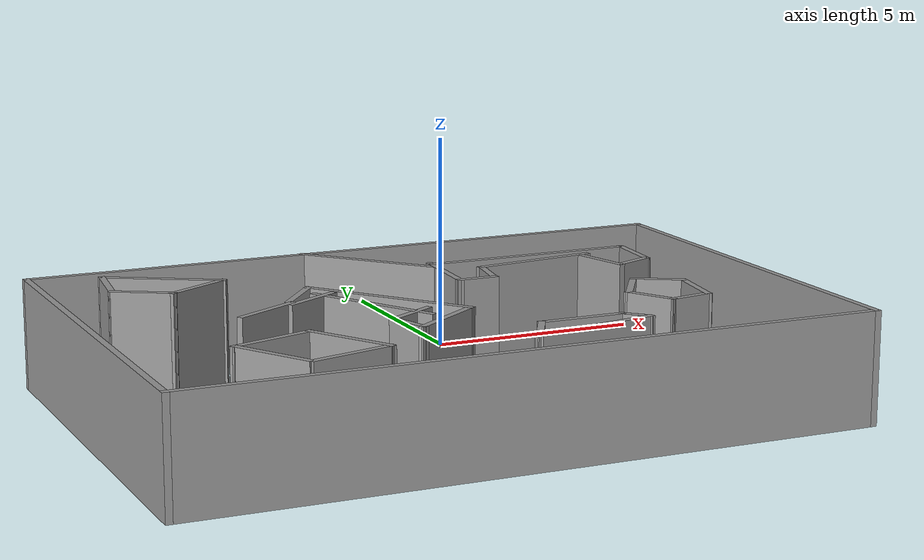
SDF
<?xml version='1.0'?>
<sdf version='1.7'>
  <model name='compare_paper2'>
    <pose>-2.29256 -4.93458 0 0 -0 0</pose>
    <link name='Wall_10'>
      <collision name='Wall_10_Collision'>
        <geometry>
          <box>
            <size>10.25 0.15 2.5</size>
          </box>
        </geometry>
        <pose>0 0 1.25 0 -0 0</pose>
      </collision>
      <visual name='Wall_10_Visual'>
        <pose>0 0 1.25 0 -0 0</pose>
        <geometry>
          <box>
            <size>10.25 0.15 2.5</size>
          </box>
        </geometry>
        <material>
          <script>
            <uri>file://media/materials/scripts/gazebo.material</uri>
            <name>Gazebo/Grey</name>
          </script>
          <ambient>1 1 1 1</ambient>
        </material>
        <meta>
          <layer>0</layer>
        </meta>
      </visual>
      <pose>-7.68074 -0.033505 0 0 -0 -1.5708</pose>
    </link>
    <link name='Wall_105'>
      <collision name='Wall_105_Collision'>
        <geometry>
          <box>
            <size>1.03815 0.15 2.5</size>
          </box>
        </geometry>
        <pose>0 0 1.25 0 -0 0</pose>
      </collision>
      <visual name='Wall_105_Visual'>
        <pose>0 0 1.25 0 -0 0</pose>
        <geometry>
          <box>
            <size>1.03815 0.15 2.5</size>
          </box>
        </geometry>
        <material>
          <script>
            <uri>file://media/materials/scripts/gazebo.material</uri>
            <name>Gazebo/Grey</name>
          </script>
          <ambient>1 1 1 1</ambient>
        </material>
        <meta>
          <layer>0</layer>
        </meta>
      </visual>
      <pose>-1.58572 -2.07847 0 0 -0 1.90242</pose>
    </link>
    <link name='Wall_122'>
      <collision name='Wall_122_Collision'>
        <geometry>
          <box>
            <size>1.31337 0.15 2.5</size>
          </box>
        </geometry>
        <pose>0 0 1.25 0 -0 0</pose>
      </collision>
      <visual name='Wall_122_Visual'>
        <pose>0 0 1.25 0 -0 0</pose>
        <geometry>
          <box>
            <size>1.31337 0.15 2.5</size>
          </box>
        </geometry>
        <material>
          <script>
            <uri>file://media/materials/scripts/gazebo.material</uri>
            <name>Gazebo/Grey</name>
          </script>
          <ambient>1 1 1 1</ambient>
        </material>
        <meta>
          <layer>0</layer>
        </meta>
      </visual>
      <pose>-1.2054 -1.33831 0 0 -0 0.555293</pose>
    </link>
    <link name='Wall_124'>
      <collision name='Wall_124_Collision'>
        <geometry>
          <box>
            <size>3.25 0.15 2.5</size>
          </box>
        </geometry>
        <pose>0 0 1.25 0 -0 0</pose>
      </collision>
      <visual name='Wall_124_Visual'>
        <pose>0 0 1.25 0 -0 0</pose>
        <geometry>
          <box>
            <size>3.25 0.15 2.5</size>
          </box>
        </geometry>
        <material>
          <script>
            <uri>file://media/materials/scripts/gazebo.material</uri>
            <name>Gazebo/Grey</name>
          </script>
          <ambient>1 1 1 1</ambient>
        </material>
        <meta>
          <layer>0</layer>
        </meta>
      </visual>
      <pose>-1.62429 -0.231243 0 0 -0 -1.0472</pose>
    </link>
    <link name='Wall_129'>
      <collision name='Wall_129_Collision'>
        <geometry>
          <box>
            <size>1.75 0.15 2.5</size>
          </box>
        </geometry>
        <pose>0 0 1.25 0 -0 0</pose>
      </collision>
      <visual name='Wall_129_Visual'>
        <pose>0 0 1.25 0 -0 0</pose>
        <geometry>
          <box>
            <size>1.75 0.15 2.5</size>
          </box>
        </geometry>
        <material>
          <script>
            <uri>file://media/materials/scripts/gazebo.material</uri>
            <name>Gazebo/Grey</name>
          </script>
          <ambient>1 1 1 1</ambient>
        </material>
        <meta>
          <layer>0</layer>
        </meta>
      </visual>
      <pose>-4.44404 2.81905 0 0 -0 0.523599</pose>
    </link>
    <link name='Wall_134'>
      <collision name='Wall_134_Collision'>
        <geometry>
          <box>
            <size>1.5 0.15 2.5</size>
          </box>
        </geometry>
        <pose>0 0 1.25 0 -0 0</pose>
      </collision>
      <visual name='Wall_134_Visual'>
        <pose>0 0 1.25 0 -0 0</pose>
        <geometry>
          <box>
            <size>1.5 0.15 2.5</size>
          </box>
        </geometry>
        <material>
          <script>
            <uri>file://media/materials/scripts/gazebo.material</uri>
            <name>Gazebo/Grey</name>
          </script>
          <ambient>1 1 1 1</ambient>
        </material>
        <meta>
          <layer>0</layer>
        </meta>
      </visual>
      <pose>-5.70622 2.77176 0 0 -0 -0.523599</pose>
    </link>
    <link name='Wall_146'>
      <collision name='Wall_146_Collision'>
        <geometry>
          <box>
            <size>2.86017 0.15 2.5</size>
          </box>
        </geometry>
        <pose>0 0 1.25 0 -0 0</pose>
      </collision>
      <visual name='Wall_146_Visual'>
        <pose>0 0 1.25 0 -0 0</pose>
        <geometry>
          <box>
            <size>2.86017 0.15 2.5</size>
          </box>
        </geometry>
        <material>
          <script>
            <uri>file://media/materials/scripts/gazebo.material</uri>
            <name>Gazebo/Grey</name>
          </script>
          <ambient>1 1 1 1</ambient>
        </material>
        <meta>
          <layer>0</layer>
        </meta>
      </visual>
      <pose>-4.92786 3.8697 0 0 -0 -0.521434</pose>
    </link>
    <link name='Wall_148'>
      <collision name='Wall_148_Collision'>
        <geometry>
          <box>
            <size>1.59769 0.15 2.5</size>
          </box>
        </geometry>
        <pose>0 0 1.25 0 -0 0</pose>
      </collision>
      <visual name='Wall_148_Visual'>
        <pose>0 0 1.25 0 -0 0</pose>
        <geometry>
          <box>
            <size>1.59769 0.15 2.5</size>
          </box>
        </geometry>
        <material>
          <script>
            <uri>file://media/materials/scripts/gazebo.material</uri>
            <name>Gazebo/Grey</name>
          </script>
          <ambient>1 1 1 1</ambient>
        </material>
        <meta>
          <layer>0</layer>
        </meta>
      </visual>
      <pose>-6.19682 3.84219 0 0 -0 1.44062</pose>
    </link>
    <link name='Wall_152'>
      <collision name='Wall_152_Collision'>
        <geometry>
          <box>
            <size>1.24008 0.15 2.5</size>
          </box>
        </geometry>
        <pose>0 0 1.25 0 -0 0</pose>
      </collision>
      <visual name='Wall_152_Visual'>
        <pose>0 0 1.25 0 -0 0</pose>
        <geometry>
          <box>
            <size>1.24008 0.15 2.5</size>
          </box>
        </geometry>
        <material>
          <script>
            <uri>file://media/materials/scripts/gazebo.material</uri>
            <name>Gazebo/Grey</name>
          </script>
          <ambient>1 1 1 1</ambient>
        </material>
        <meta>
          <layer>0</layer>
        </meta>
      </visual>
      <pose>0.620588 -3.63214 0 0 -0 1.06318</pose>
    </link>
    <link name='Wall_153'>
      <collision name='Wall_153_Collision'>
        <geometry>
          <box>
            <size>2 0.15 2.5</size>
          </box>
        </geometry>
        <pose>0 0 1.25 0 -0 0</pose>
      </collision>
      <visual name='Wall_153_Visual'>
        <pose>0 0 1.25 0 -0 0</pose>
        <geometry>
          <box>
            <size>2 0.15 2.5</size>
          </box>
        </geometry>
        <material>
          <script>
            <uri>file://media/materials/scripts/gazebo.material</uri>
            <name>Gazebo/Grey</name>
          </script>
          <ambient>1 1 1 1</ambient>
        </material>
        <meta>
          <layer>0</layer>
        </meta>
      </visual>
      <pose>1.81053 -3.15583 0 0 -0 0</pose>
    </link>
    <link name='Wall_158'>
      <collision name='Wall_158_Collision'>
        <geometry>
          <box>
            <size>0.75 0.15 2.5</size>
          </box>
        </geometry>
        <pose>0 0 1.25 0 -0 0</pose>
      </collision>
      <visual name='Wall_158_Visual'>
        <pose>0 0 1.25 0 -0 0</pose>
        <geometry>
          <box>
            <size>0.75 0.15 2.5</size>
          </box>
        </geometry>
        <material>
          <script>
            <uri>file://media/materials/scripts/gazebo.material</uri>
            <name>Gazebo/Grey</name>
          </script>
          <ambient>1 1 1 1</ambient>
        </material>
        <meta>
          <layer>0</layer>
        </meta>
      </visual>
      <pose>2.94766 -3.36796 0 0 -0 -0.785398</pose>
    </link>
    <link name='Wall_160'>
      <collision name='Wall_160_Collision'>
        <geometry>
          <box>
            <size>3.00349 0.15 2.5</size>
          </box>
        </geometry>
        <pose>0 0 1.25 0 -0 0</pose>
      </collision>
      <visual name='Wall_160_Visual'>
        <pose>0 0 1.25 0 -0 0</pose>
        <geometry>
          <box>
            <size>3.00349 0.15 2.5</size>
          </box>
        </geometry>
        <material>
          <script>
            <uri>file://media/materials/scripts/gazebo.material</uri>
            <name>Gazebo/Grey</name>
          </script>
          <ambient>1 1 1 1</ambient>
        </material>
        <meta>
          <layer>0</layer>
        </meta>
      </visual>
      <pose>1.75772 -3.84427 0 0 -0 0.186239</pose>
    </link>
    <link name='Wall_168'>
      <collision name='Wall_168_Collision'>
        <geometry>
          <box>
            <size>3.48424 0.15 2.5</size>
          </box>
        </geometry>
        <pose>0 0 1.25 0 -0 0</pose>
      </collision>
      <visual name='Wall_168_Visual'>
        <pose>0 0 1.25 0 -0 0</pose>
        <geometry>
          <box>
            <size>3.48424 0.15 2.5</size>
          </box>
        </geometry>
        <material>
          <script>
            <uri>file://media/materials/scripts/gazebo.material</uri>
            <name>Gazebo/Grey</name>
          </script>
          <ambient>1 1 1 1</ambient>
        </material>
        <meta>
          <layer>0</layer>
        </meta>
      </visual>
      <pose>-0.072263 3.80211 0 0 -0 -0.848243</pose>
    </link>
    <link name='Wall_177'>
      <collision name='Wall_177_Collision'>
        <geometry>
          <box>
            <size>2.0027 0.15 2.5</size>
          </box>
        </geometry>
        <pose>0 0 1.25 0 -0 0</pose>
      </collision>
      <visual name='Wall_177_Visual'>
        <pose>0 0 1.25 0 -0 0</pose>
        <geometry>
          <box>
            <size>2.0027 0.15 2.5</size>
          </box>
        </geometry>
        <material>
          <script>
            <uri>file://media/materials/scripts/gazebo.material</uri>
            <name>Gazebo/Grey</name>
          </script>
          <ambient>1 1 1 1</ambient>
        </material>
        <meta>
          <layer>0</layer>
        </meta>
      </visual>
      <pose>1.06444 2.00537 0 0 -0 -1.6248</pose>
    </link>
    <link name='Wall_179'>
      <collision name='Wall_179_Collision'>
        <geometry>
          <box>
            <size>1 0.15 2.5</size>
          </box>
        </geometry>
        <pose>0 0 1.25 0 -0 0</pose>
      </collision>
      <visual name='Wall_179_Visual'>
        <pose>0 0 1.25 0 -0 0</pose>
        <geometry>
          <box>
            <size>1 0.15 2.5</size>
          </box>
        </geometry>
        <material>
          <script>
            <uri>file://media/materials/scripts/gazebo.material</uri>
            <name>Gazebo/Grey</name>
          </script>
          <ambient>1 1 1 1</ambient>
        </material>
        <meta>
          <layer>0</layer>
        </meta>
      </visual>
      <pose>1.43944 1.08037 0 0 -0 0</pose>
    </link>
    <link name='Wall_191'>
      <collision name='Wall_191_Collision'>
        <geometry>
          <box>
            <size>1.01313 0.15 2.5</size>
          </box>
        </geometry>
        <pose>0 0 1.25 0 -0 0</pose>
      </collision>
      <visual name='Wall_191_Visual'>
        <pose>0 0 1.25 0 -0 0</pose>
        <geometry>
          <box>
            <size>1.01313 0.15 2.5</size>
          </box>
        </geometry>
        <material>
          <script>
            <uri>file://media/materials/scripts/gazebo.material</uri>
            <name>Gazebo/Grey</name>
          </script>
          <ambient>1 1 1 1</ambient>
        </material>
        <meta>
          <layer>0</layer>
        </meta>
      </visual>
      <pose>1.93994 1.63187 0 0 -0 -1.74547</pose>
    </link>
    <link name='Wall_195'>
      <collision name='Wall_195_Collision'>
        <geometry>
          <box>
            <size>3.02141 0.15 2.5</size>
          </box>
        </geometry>
        <pose>0 0 1.25 0 -0 0</pose>
      </collision>
      <visual name='Wall_195_Visual'>
        <pose>0 0 1.25 0 -0 0</pose>
        <geometry>
          <box>
            <size>3.02141 0.15 2.5</size>
          </box>
        </geometry>
        <material>
          <script>
            <uri>file://media/materials/scripts/gazebo.material</uri>
            <name>Gazebo/Grey</name>
          </script>
          <ambient>1 1 1 1</ambient>
        </material>
        <meta>
          <layer>0</layer>
        </meta>
      </visual>
      <pose>3.42844 2.25587 0 0 -0 -3.0194</pose>
    </link>
    <link name='Wall_199'>
      <collision name='Wall_199_Collision'>
        <geometry>
          <box>
            <size>1.5 0.15 2.5</size>
          </box>
        </geometry>
        <pose>0 0 1.25 0 -0 0</pose>
      </collision>
      <visual name='Wall_199_Visual'>
        <pose>0 0 1.25 0 -0 0</pose>
        <geometry>
          <box>
            <size>1.5 0.15 2.5</size>
          </box>
        </geometry>
        <material>
          <script>
            <uri>file://media/materials/scripts/gazebo.material</uri>
            <name>Gazebo/Grey</name>
          </script>
          <ambient>1 1 1 1</ambient>
        </material>
        <meta>
          <layer>0</layer>
        </meta>
      </visual>
      <pose>4.83857 1.71599 0 0 -0 -1.309</pose>
    </link>
    <link name='Wall_205'>
      <collision name='Wall_205_Collision'>
        <geometry>
          <box>
            <size>1.06924 0.15 2.5</size>
          </box>
        </geometry>
        <pose>0 0 1.25 0 -0 0</pose>
      </collision>
      <visual name='Wall_205_Visual'>
        <pose>0 0 1.25 0 -0 0</pose>
        <geometry>
          <box>
            <size>1.06924 0.15 2.5</size>
          </box>
        </geometry>
        <material>
          <script>
            <uri>file://media/materials/scripts/gazebo.material</uri>
            <name>Gazebo/Grey</name>
          </script>
          <ambient>1 1 1 1</ambient>
        </material>
        <meta>
          <layer>0</layer>
        </meta>
      </visual>
      <pose>5.46908 1.26546 0 0 -0 0.390607</pose>
    </link>
    <link name='Wall_209'>
      <collision name='Wall_209_Collision'>
        <geometry>
          <box>
            <size>1.5037 0.15 2.5</size>
          </box>
        </geometry>
        <pose>0 0 1.25 0 -0 0</pose>
      </collision>
      <visual name='Wall_209_Visual'>
        <pose>0 0 1.25 0 -0 0</pose>
        <geometry>
          <box>
            <size>1.5037 0.15 2.5</size>
          </box>
        </geometry>
        <material>
          <script>
            <uri>file://media/materials/scripts/gazebo.material</uri>
            <name>Gazebo/Grey</name>
          </script>
          <ambient>1 1 1 1</ambient>
        </material>
        <meta>
          <layer>0</layer>
        </meta>
      </visual>
      <pose>5.94577 2.13047 0 0 -0 -1.64474</pose>
    </link>
    <link name='Wall_212'>
      <collision name='Wall_212_Collision'>
        <geometry>
          <box>
            <size>5 0.15 2.5</size>
          </box>
        </geometry>
        <pose>0 0 1.25 0 -0 0</pose>
      </collision>
      <visual name='Wall_212_Visual'>
        <pose>0 0 1.25 0 -0 0</pose>
        <geometry>
          <box>
            <size>5 0.15 2.5</size>
          </box>
        </geometry>
        <material>
          <script>
            <uri>file://media/materials/scripts/gazebo.material</uri>
            <name>Gazebo/Grey</name>
          </script>
          <ambient>1 1 1 1</ambient>
        </material>
        <meta>
          <layer>0</layer>
        </meta>
      </visual>
      <pose>3.56043 2.80905 0 0 -0 0</pose>
    </link>
    <link name='Wall_226'>
      <collision name='Wall_226_Collision'>
        <geometry>
          <box>
            <size>1.10143 0.15 2.5</size>
          </box>
        </geometry>
        <pose>0 0 1.25 0 -0 0</pose>
      </collision>
      <visual name='Wall_226_Visual'>
        <pose>0 0 1.25 0 -0 0</pose>
        <geometry>
          <box>
            <size>1.10143 0.15 2.5</size>
          </box>
        </geometry>
        <material>
          <script>
            <uri>file://media/materials/scripts/gazebo.material</uri>
            <name>Gazebo/Grey</name>
          </script>
          <ambient>1 1 1 1</ambient>
        </material>
        <meta>
          <layer>0</layer>
        </meta>
      </visual>
      <pose>4.8381 -2.36314 0 0 -0 -2.96625</pose>
    </link>
    <link name='Wall_228'>
      <collision name='Wall_228_Collision'>
        <geometry>
          <box>
            <size>1.25 0.15 2.5</size>
          </box>
        </geometry>
        <pose>0 0 1.25 0 -0 0</pose>
      </collision>
      <visual name='Wall_228_Visual'>
        <pose>0 0 1.25 0 -0 0</pose>
        <geometry>
          <box>
            <size>1.25 0.15 2.5</size>
          </box>
        </geometry>
        <material>
          <script>
            <uri>file://media/materials/scripts/gazebo.material</uri>
            <name>Gazebo/Grey</name>
          </script>
          <ambient>1 1 1 1</ambient>
        </material>
        <meta>
          <layer>0</layer>
        </meta>
      </visual>
      <pose>4.09468 -1.96981 0 0 -0 2.0944</pose>
    </link>
    <link name='Wall_229'>
      <collision name='Wall_229_Collision'>
        <geometry>
          <box>
            <size>1.47724 0.15 2.5</size>
          </box>
        </geometry>
        <pose>0 0 1.25 0 -0 0</pose>
      </collision>
      <visual name='Wall_229_Visual'>
        <pose>0 0 1.25 0 -0 0</pose>
        <geometry>
          <box>
            <size>1.47724 0.15 2.5</size>
          </box>
        </geometry>
        <material>
          <script>
            <uri>file://media/materials/scripts/gazebo.material</uri>
            <name>Gazebo/Grey</name>
          </script>
          <ambient>1 1 1 1</ambient>
        </material>
        <meta>
          <layer>0</layer>
        </meta>
      </visual>
      <pose>4.1881 -0.934993 0 0 -0 1.00024</pose>
    </link>
    <link name='Wall_230'>
      <collision name='Wall_230_Collision'>
        <geometry>
          <box>
            <size>1.25 0.15 2.5</size>
          </box>
        </geometry>
        <pose>0 0 1.25 0 -0 0</pose>
      </collision>
      <visual name='Wall_230_Visual'>
        <pose>0 0 1.25 0 -0 0</pose>
        <geometry>
          <box>
            <size>1.25 0.15 2.5</size>
          </box>
        </geometry>
        <material>
          <script>
            <uri>file://media/materials/scripts/gazebo.material</uri>
            <name>Gazebo/Grey</name>
          </script>
          <ambient>1 1 1 1</ambient>
        </material>
        <meta>
          <layer>0</layer>
        </meta>
      </visual>
      <pose>5.03284 -0.65149 0 0 -0 -0.523599</pose>
    </link>
    <link name='Wall_231'>
      <collision name='Wall_231_Collision'>
        <geometry>
          <box>
            <size>1.51875 0.15 2.5</size>
          </box>
        </geometry>
        <pose>0 0 1.25 0 -0 0</pose>
      </collision>
      <visual name='Wall_231_Visual'>
        <pose>0 0 1.25 0 -0 0</pose>
        <geometry>
          <box>
            <size>1.51875 0.15 2.5</size>
          </box>
        </geometry>
        <material>
          <script>
            <uri>file://media/materials/scripts/gazebo.material</uri>
            <name>Gazebo/Grey</name>
          </script>
          <ambient>1 1 1 1</ambient>
        </material>
        <meta>
          <layer>0</layer>
        </meta>
      </visual>
      <pose>5.40784 -1.60332 0 0 -0 -1.71938</pose>
    </link>
    <link name='Wall_41'>
      <collision name='Wall_41_Collision'>
        <geometry>
          <box>
            <size>2 0.15 2.5</size>
          </box>
        </geometry>
        <pose>0 0 1.25 0 -0 0</pose>
      </collision>
      <visual name='Wall_41_Visual'>
        <pose>0 0 1.25 0 -0 0</pose>
        <geometry>
          <box>
            <size>2 0.15 2.5</size>
          </box>
        </geometry>
        <material>
          <script>
            <uri>file://media/materials/scripts/gazebo.material</uri>
            <name>Gazebo/Grey</name>
          </script>
          <ambient>1 1 1 1</ambient>
        </material>
        <meta>
          <layer>0</layer>
        </meta>
      </visual>
      <pose>-4.97984 -3.28865 0 0 -0 2.0944</pose>
    </link>
    <link name='Wall_42'>
      <collision name='Wall_42_Collision'>
        <geometry>
          <box>
            <size>2.00196 0.15 2.5</size>
          </box>
        </geometry>
        <pose>0 0 1.25 0 -0 0</pose>
      </collision>
      <visual name='Wall_42_Visual'>
        <pose>0 0 1.25 0 -0 0</pose>
        <geometry>
          <box>
            <size>2.00196 0.15 2.5</size>
          </box>
        </geometry>
        <material>
          <script>
            <uri>file://media/materials/scripts/gazebo.material</uri>
            <name>Gazebo/Grey</name>
          </script>
          <ambient>1 1 1 1</ambient>
        </material>
        <meta>
          <layer>0</layer>
        </meta>
      </visual>
      <pose>-4.55969 -2.20763 0 0 -0 0.307123</pose>
    </link>
    <link name='Wall_43'>
      <collision name='Wall_43_Collision'>
        <geometry>
          <box>
            <size>2.16747 0.15 2.5</size>
          </box>
        </geometry>
        <pose>0 0 1.25 0 -0 0</pose>
      </collision>
      <visual name='Wall_43_Visual'>
        <pose>0 0 1.25 0 -0 0</pose>
        <geometry>
          <box>
            <size>2.16747 0.15 2.5</size>
          </box>
        </geometry>
        <material>
          <script>
            <uri>file://media/materials/scripts/gazebo.material</uri>
            <name>Gazebo/Grey</name>
          </script>
          <ambient>1 1 1 1</ambient>
        </material>
        <meta>
          <layer>0</layer>
        </meta>
      </visual>
      <pose>-3.16108 -2.79449 0 0 -0 -1.03388</pose>
    </link>
    <link name='Wall_44'>
      <collision name='Wall_44_Collision'>
        <geometry>
          <box>
            <size>2 0.15 2.5</size>
          </box>
        </geometry>
        <pose>0 0 1.25 0 -0 0</pose>
      </collision>
      <visual name='Wall_44_Visual'>
        <pose>0 0 1.25 0 -0 0</pose>
        <geometry>
          <box>
            <size>2 0.15 2.5</size>
          </box>
        </geometry>
        <material>
          <script>
            <uri>file://media/materials/scripts/gazebo.material</uri>
            <name>Gazebo/Grey</name>
          </script>
          <ambient>1 1 1 1</ambient>
        </material>
        <meta>
          <layer>0</layer>
        </meta>
      </visual>
      <pose>-3.5386 -3.90069 0 0 -0 -2.87979</pose>
    </link>
    <link name='Wall_57'>
      <collision name='Wall_57_Collision'>
        <geometry>
          <box>
            <size>1.75 0.15 2.5</size>
          </box>
        </geometry>
        <pose>0 0 1.25 0 -0 0</pose>
      </collision>
      <visual name='Wall_57_Visual'>
        <pose>0 0 1.25 0 -0 0</pose>
        <geometry>
          <box>
            <size>1.75 0.15 2.5</size>
          </box>
        </geometry>
        <material>
          <script>
            <uri>file://media/materials/scripts/gazebo.material</uri>
            <name>Gazebo/Grey</name>
          </script>
          <ambient>1 1 1 1</ambient>
        </material>
        <meta>
          <layer>0</layer>
        </meta>
      </visual>
      <pose>-3.82617 0.142864 0 0 -0 0.523599</pose>
    </link>
    <link name='Wall_67'>
      <collision name='Wall_67_Collision'>
        <geometry>
          <box>
            <size>1.5 0.15 2.5</size>
          </box>
        </geometry>
        <pose>0 0 1.25 0 -0 0</pose>
      </collision>
      <visual name='Wall_67_Visual'>
        <pose>0 0 1.25 0 -0 0</pose>
        <geometry>
          <box>
            <size>1.5 0.15 2.5</size>
          </box>
        </geometry>
        <material>
          <script>
            <uri>file://media/materials/scripts/gazebo.material</uri>
            <name>Gazebo/Grey</name>
          </script>
          <ambient>1 1 1 1</ambient>
        </material>
        <meta>
          <layer>0</layer>
        </meta>
      </visual>
      <pose>-2.60557 0.718576 0 0 -0 0.523599</pose>
    </link>
    <link name='Wall_7'>
      <collision name='Wall_7_Collision'>
        <geometry>
          <box>
            <size>15.5115 0.15 2.5</size>
          </box>
        </geometry>
        <pose>0 0 1.25 0 -0 0</pose>
      </collision>
      <visual name='Wall_7_Visual'>
        <pose>0 0 1.25 0 -0 0</pose>
        <geometry>
          <box>
            <size>15.5115 0.15 2.5</size>
          </box>
        </geometry>
        <material>
          <script>
            <uri>file://media/materials/scripts/gazebo.material</uri>
            <name>Gazebo/Grey</name>
          </script>
          <ambient>1 1 1 1</ambient>
        </material>
        <meta>
          <layer>0</layer>
        </meta>
      </visual>
      <pose>0 -5.0835 0 0 -0 0</pose>
    </link>
    <link name='Wall_76'>
      <collision name='Wall_76_Collision'>
        <geometry>
          <box>
            <size>1.54014 0.15 2.5</size>
          </box>
        </geometry>
        <pose>0 0 1.25 0 -0 0</pose>
      </collision>
      <visual name='Wall_76_Visual'>
        <pose>0 0 1.25 0 -0 0</pose>
        <geometry>
          <box>
            <size>1.54014 0.15 2.5</size>
          </box>
        </geometry>
        <material>
          <script>
            <uri>file://media/materials/scripts/gazebo.material</uri>
            <name>Gazebo/Grey</name>
          </script>
          <ambient>1 1 1 1</ambient>
        </material>
        <meta>
          <layer>0</layer>
        </meta>
      </visual>
      <pose>-2.73472 1.18962 0 0 -0 -2.22869</pose>
    </link>
    <link name='Wall_78'>
      <collision name='Wall_78_Collision'>
        <geometry>
          <box>
            <size>4.10544 0.15 2.5</size>
          </box>
        </geometry>
        <pose>0 0 1.25 0 -0 0</pose>
      </collision>
      <visual name='Wall_78_Visual'>
        <pose>0 0 1.25 0 -0 0</pose>
        <geometry>
          <box>
            <size>4.10544 0.15 2.5</size>
          </box>
        </geometry>
        <material>
          <script>
            <uri>file://media/materials/scripts/gazebo.material</uri>
            <name>Gazebo/Grey</name>
          </script>
          <ambient>1 1 1 1</ambient>
        </material>
        <meta>
          <layer>0</layer>
        </meta>
      </visual>
      <pose>-1.09586 0.178243 0 0 -0 -0.909969</pose>
    </link>
    <link name='Wall_8'>
      <collision name='Wall_8_Collision'>
        <geometry>
          <box>
            <size>10.25 0.15 2.5</size>
          </box>
        </geometry>
        <pose>0 0 1.25 0 -0 0</pose>
      </collision>
      <visual name='Wall_8_Visual'>
        <pose>0 0 1.25 0 -0 0</pose>
        <geometry>
          <box>
            <size>10.25 0.15 2.5</size>
          </box>
        </geometry>
        <material>
          <script>
            <uri>file://media/materials/scripts/gazebo.material</uri>
            <name>Gazebo/Grey</name>
          </script>
          <ambient>1 1 1 1</ambient>
        </material>
        <meta>
          <layer>0</layer>
        </meta>
      </visual>
      <pose>7.68074 -0.033505 0 0 -0 1.5708</pose>
    </link>
    <link name='Wall_84'>
      <collision name='Wall_84_Collision'>
        <geometry>
          <box>
            <size>2.06693 0.15 2.5</size>
          </box>
        </geometry>
        <pose>0 0 1.25 0 -0 0</pose>
      </collision>
      <visual name='Wall_84_Visual'>
        <pose>0 0 1.25 0 -0 0</pose>
        <geometry>
          <box>
            <size>2.06693 0.15 2.5</size>
          </box>
        </geometry>
        <material>
          <script>
            <uri>file://media/materials/scripts/gazebo.material</uri>
            <name>Gazebo/Grey</name>
          </script>
          <ambient>1 1 1 1</ambient>
        </material>
        <meta>
          <layer>0</layer>
        </meta>
      </visual>
      <pose>-0.661562 -1.94074 0 0 -0 -2.52069</pose>
    </link>
    <link name='Wall_9'>
      <collision name='Wall_9_Collision'>
        <geometry>
          <box>
            <size>15.5115 0.15 2.5</size>
          </box>
        </geometry>
        <pose>0 0 1.25 0 -0 0</pose>
      </collision>
      <visual name='Wall_9_Visual'>
        <pose>0 0 1.25 0 -0 0</pose>
        <geometry>
          <box>
            <size>15.5115 0.15 2.5</size>
          </box>
        </geometry>
        <material>
          <script>
            <uri>file://media/materials/scripts/gazebo.material</uri>
            <name>Gazebo/Grey</name>
          </script>
          <ambient>1 1 1 1</ambient>
        </material>
        <meta>
          <layer>0</layer>
        </meta>
      </visual>
      <pose>0 5.01649 0 0 -0 3.14159</pose>
    </link>
    <static>1</static>
  </model>
</sdf>
